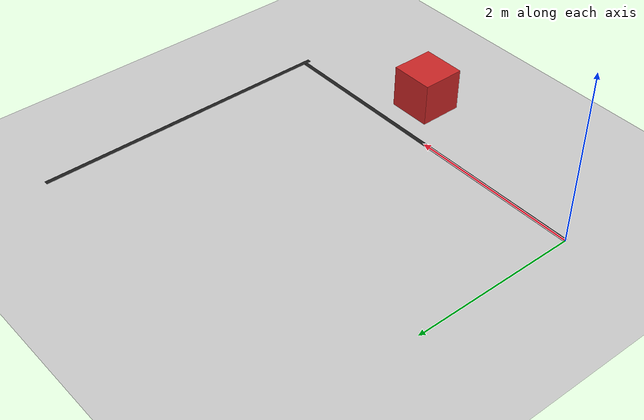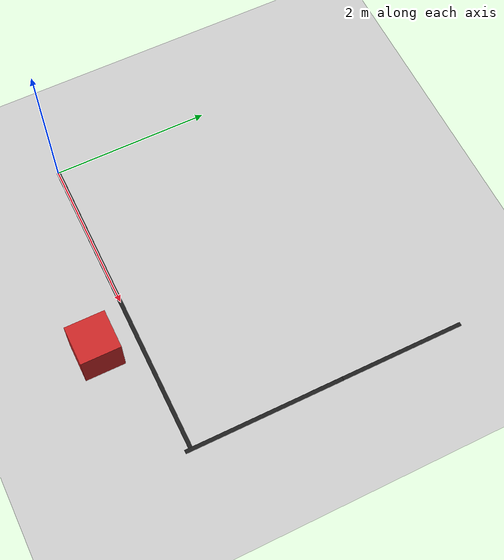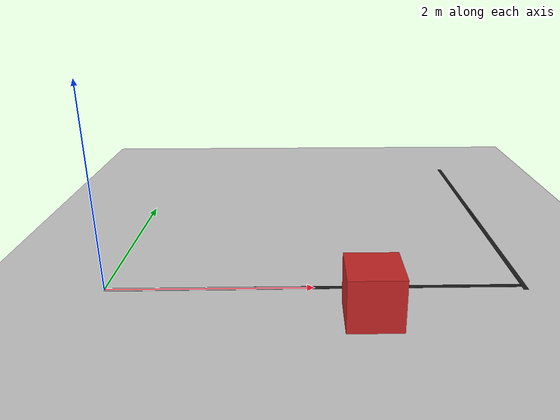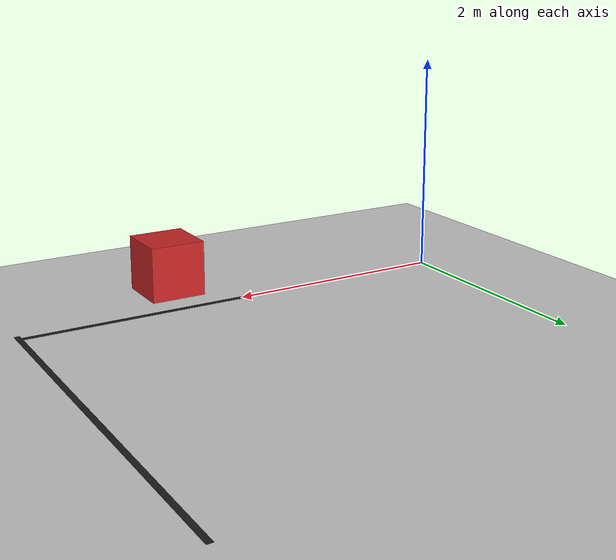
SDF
<?xml version="1.0" ?>
<sdf version="1.6">
  <world name="imre_test_sahasi">

    <include><uri>model://sun</uri></include>
    <include><uri>model://ground_plane</uri></include>

    <model name="track_line">
      <static>true</static>
      <link name="link">

        <visual name="straight_1">
          <pose>2 0 0.001 0 0 0</pose>
          <geometry>
            <box> <size>4.0 0.05 0.001</size> </box>
          </geometry>
          <material>
            <script>
              <uri>file://media/materials/scripts/gazebo.material</uri>
              <name>Gazebo/FlatBlack</name>
            </script>
          </material>
        </visual>

        <visual name="turn_1">
          <pose>4.025 0.925 0.001 0 0 1.57</pose>
          <geometry>
            <box> <size>2.0 0.05 0.001</size> </box>
          </geometry>
          <material>
            <script>
              <uri>file://media/materials/scripts/gazebo.material</uri>
              <name>Gazebo/FlatBlack</name>
            </script>
          </material>
        </visual>

        <visual name="straight_2">
          <pose>4.025 2.5 0.001 0 0 1.57</pose>
          <geometry>
             <box> <size>2.0 0.05 0.001</size> </box>
          </geometry>
          <material>
            <script>
              <uri>file://media/materials/scripts/gazebo.material</uri>
              <name>Gazebo/FlatBlack</name>
            </script>
          </material>
        </visual>
      </link>
    </model>

    <model name="red_box_obstacle">
      <pose>2.5 -0.5 0.25 0 0 0</pose>
      <static>true</static>
      <link name="link">
        <collision name="collision"><geometry><box><size>0.5 0.5 0.5</size></box></geometry></collision>
        <visual name="visual"><geometry><box><size>0.5 0.5 0.5</size></box></geometry>
        <material><script><uri>file://media/materials/scripts/gazebo.material</uri><name>Gazebo/Red</name></script></material></visual>
      </link>
    </model>

  </world>
</sdf>
